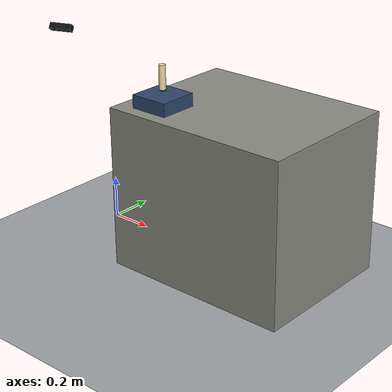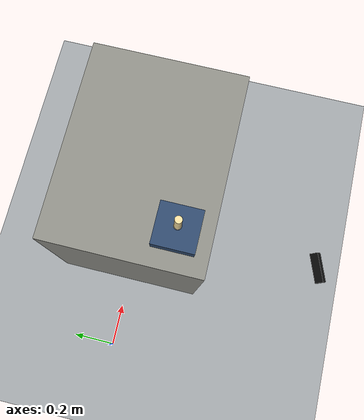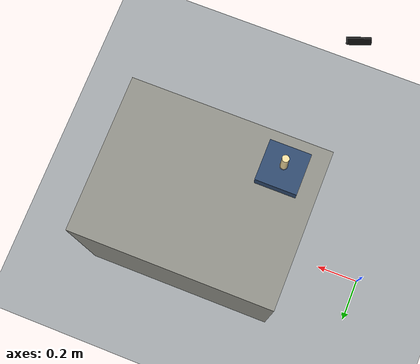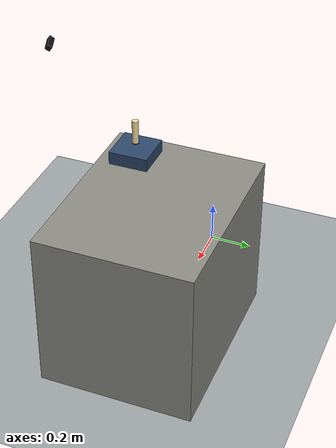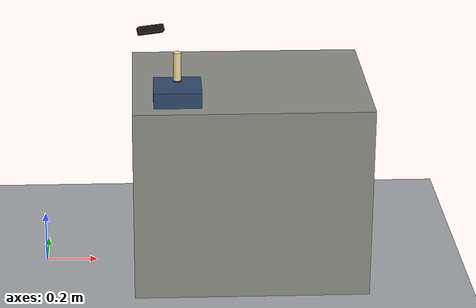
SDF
<?xml version="1.0"?>
<sdf version="1.9">
  <world name="proposal_simulation_cell_v1_3_contact_physics_validation">
    <physics name="1ms" type="ignored">
      <max_step_size>0.001</max_step_size>
      <real_time_factor>1.0</real_time_factor>
      <real_time_update_rate>1000</real_time_update_rate>
    </physics>

    <plugin name="gz::sim::systems::Physics" filename="ignition-gazebo-physics-system"/>
    <plugin name="gz::sim::systems::UserCommands" filename="ignition-gazebo-user-commands-system"/>
    <plugin name="gz::sim::systems::SceneBroadcaster" filename="ignition-gazebo-scene-broadcaster-system"/>
    <plugin name="gz::sim::systems::Contact" filename="ignition-gazebo-contact-system"/>
    <plugin name="gz::sim::systems::Sensors" filename="ignition-gazebo-sensors-system">
      <render_engine>ogre2</render_engine>
    </plugin>

    <gravity>0 0 -9.81</gravity>
    <scene>
      <ambient>0.45 0.45 0.45 1</ambient>
      <background>0.72 0.74 0.76 1</background>
      <shadows>true</shadows>
    </scene>

    <model name="ground_plane">
      <static>true</static>
      <link name="link">
        <collision name="collision">
          <geometry><plane><normal>0 0 1</normal><size>20 20</size></plane></geometry>
        </collision>
        <visual name="visual">
          <geometry><plane><normal>0 0 1</normal><size>20 20</size></plane></geometry>
          <material>
            <ambient>0.55 0.57 0.58 1</ambient>
            <diffuse>0.62 0.64 0.65 1</diffuse>
          </material>
        </visual>
      </link>
    </model>

    <model name="work_table">
      <static>true</static>
      <pose>0.80 0.00 0.375 0 0 0</pose>
      <link name="table_link">
        <collision name="table_collision">
          <geometry><box><size>0.90 0.70 0.75</size></box></geometry>
        </collision>
        <visual name="table_visual">
          <geometry><box><size>0.90 0.70 0.75</size></box></geometry>
          <material>
            <ambient>0.45 0.45 0.43 1</ambient>
            <diffuse>0.55 0.55 0.52 1</diffuse>
          </material>
        </visual>
        <sensor name="table_contact_sensor" type="contact">
          <always_on>true</always_on>
          <update_rate>250</update_rate>
          <topic>/proposal_simulation_cell/table_contacts</topic>
          <contact>
            <collision>table_collision</collision>
          </contact>
        </sensor>
      </link>
    </model>

    <model name="hole_block">
      <static>true</static>
      <pose>0.52 -0.20 0.78 0 0 0</pose>
      <link name="hole_block_link">
        <collision name="hole_collision">
          <geometry><box><size>0.18 0.18 0.06</size></box></geometry>
        </collision>
        <visual name="block_visual">
          <geometry><box><size>0.18 0.18 0.06</size></box></geometry>
          <material>
            <ambient>0.12 0.18 0.28 1</ambient>
            <diffuse>0.18 0.28 0.42 1</diffuse>
          </material>
        </visual>
        <sensor name="hole_contact_sensor" type="contact">
          <always_on>true</always_on>
          <update_rate>250</update_rate>
          <topic>/proposal_simulation_cell/hole_contacts</topic>
          <contact>
            <collision>hole_collision</collision>
          </contact>
        </sensor>
      </link>
    </model>

    <model name="hole_center_marker">
      <static>true</static>
      <pose>0.52 -0.20 0.83 0 0 0</pose>
      <link name="hole_marker_link">
        <visual name="hole_visual">
          <geometry><cylinder><radius>0.017</radius><length>0.004</length></cylinder></geometry>
          <material>
            <ambient>0.02 0.02 0.02 1</ambient>
            <diffuse>0.02 0.02 0.02 1</diffuse>
          </material>
        </visual>
      </link>
    </model>

    <model name="cylindrical_peg">
      <static>false</static>
      <pose>0.52 -0.20 0.885 0 0 0</pose>
      <link name="peg_link">
        <inertial>
          <mass>0.08</mass>
          <inertia>
            <ixx>0.00005</ixx><iyy>0.00005</iyy><izz>0.00002</izz>
            <ixy>0</ixy><ixz>0</ixz><iyz>0</iyz>
          </inertia>
        </inertial>
        <collision name="peg_collision">
          <geometry><cylinder><radius>0.015</radius><length>0.11</length></cylinder></geometry>
          <surface>
            <friction>
              <ode>
                <mu>0.8</mu>
                <mu2>0.8</mu2>
              </ode>
            </friction>
            <contact>
              <ode>
                <kp>100000</kp>
                <kd>10</kd>
              </ode>
            </contact>
          </surface>
        </collision>
        <visual name="peg_visual">
          <geometry><cylinder><radius>0.015</radius><length>0.11</length></cylinder></geometry>
          <material>
            <ambient>0.85 0.78 0.55 1</ambient>
            <diffuse>0.95 0.86 0.62 1</diffuse>
          </material>
        </visual>
        <sensor name="peg_contact_sensor" type="contact">
          <always_on>true</always_on>
          <update_rate>250</update_rate>
          <topic>/proposal_simulation_cell/peg_contacts</topic>
          <contact>
            <collision>peg_collision</collision>
          </contact>
        </sensor>
      </link>
    </model>

    <model name="d405_rgbd_camera">
      <static>true</static>
      <pose>0.42 -0.65 1.18 0.95 0 0.35</pose>
      <link name="camera_link">
        <visual name="camera_visual">
          <geometry><box><size>0.09 0.025 0.025</size></box></geometry>
          <material>
            <ambient>0.03 0.03 0.03 1</ambient>
            <diffuse>0.05 0.05 0.05 1</diffuse>
          </material>
        </visual>
        <sensor name="d405_color" type="camera">
          <always_on>true</always_on>
          <update_rate>30</update_rate>
          <topic>/proposal_simulation_cell/d405/color/image_raw</topic>
          <camera>
            <horizontal_fov>1.22</horizontal_fov>
            <image>
              <width>848</width>
              <height>480</height>
              <format>R8G8B8</format>
            </image>
            <clip>
              <near>0.07</near>
              <far>2.0</far>
            </clip>
          </camera>
        </sensor>
        <sensor name="d405_depth" type="depth_camera">
          <always_on>true</always_on>
          <update_rate>30</update_rate>
          <topic>/proposal_simulation_cell/d405/depth/image_rect_raw</topic>
          <camera>
            <horizontal_fov>1.22</horizontal_fov>
            <image>
              <width>848</width>
              <height>480</height>
              <format>R_FLOAT32</format>
            </image>
            <clip>
              <near>0.07</near>
              <far>2.0</far>
            </clip>
          </camera>
        </sensor>
      </link>
    </model>

    <light name="key_area_light" type="point">
      <pose>0.20 -0.60 1.80 0 0 0</pose>
      <cast_shadows>true</cast_shadows>
      <intensity>1.4</intensity>
      <diffuse>0.95 0.95 0.90 1</diffuse>
      <specular>0.35 0.35 0.35 1</specular>
      <attenuation>
        <range>5.0</range>
        <constant>0.6</constant>
        <linear>0.15</linear>
        <quadratic>0.02</quadratic>
      </attenuation>
    </light>
  </world>
</sdf>
